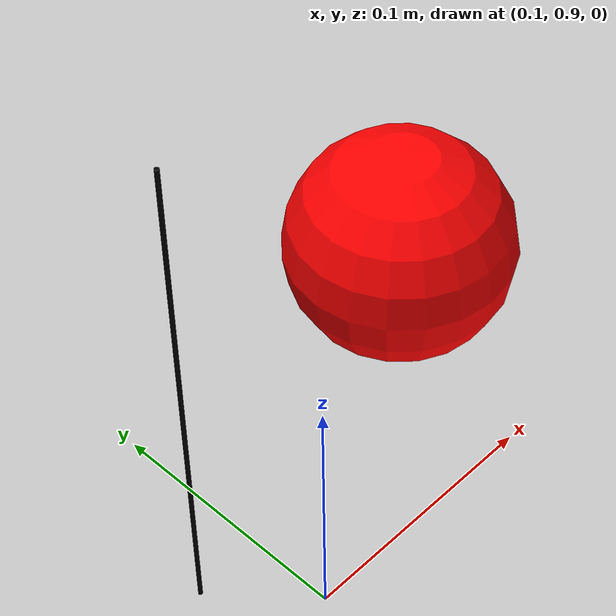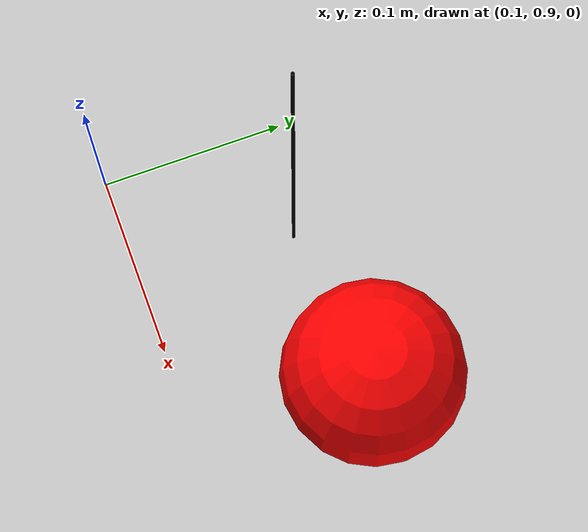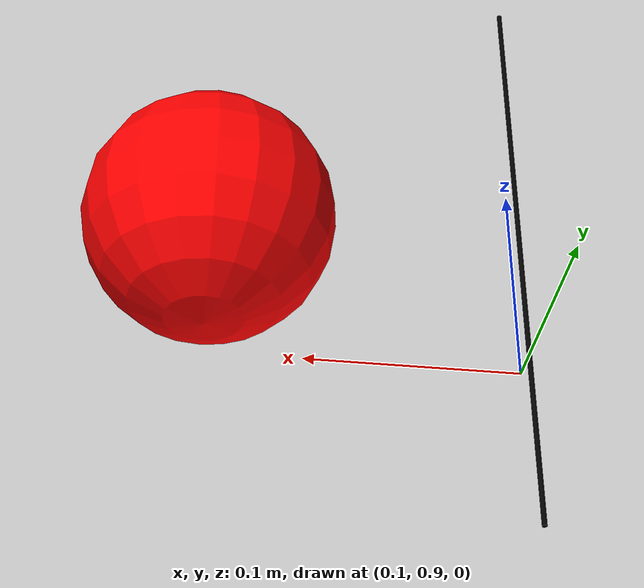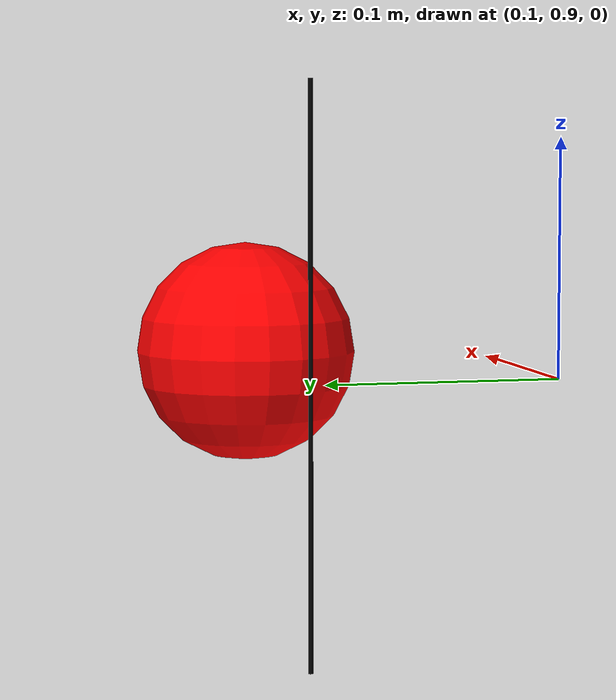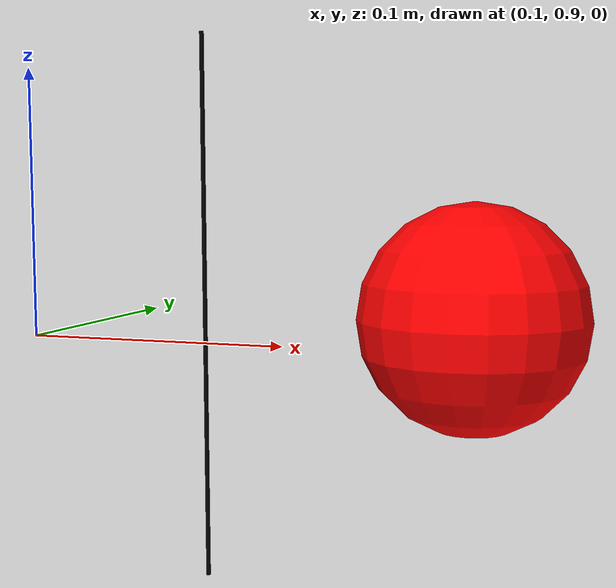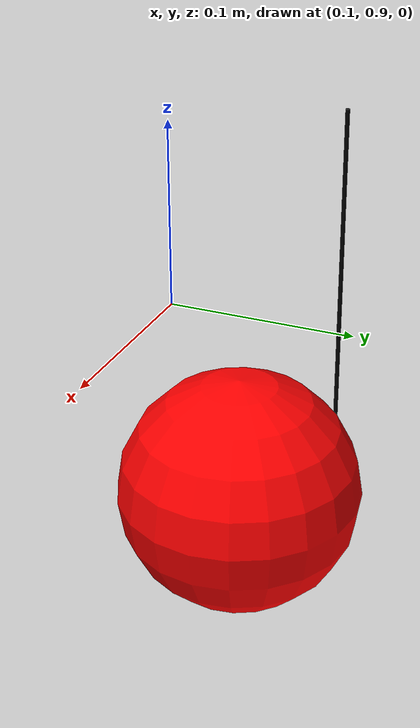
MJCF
<mujoco>
  <option gravity="0 -9.81 0" />
  <worldbody>
    <light diffuse=".5 .5 .5" pos="0 3 0" dir="0 -1 0"/>
    <body name="pendulum" pos="0 1 0">
      <joint name="hinge" type="hinge" axis="0 0 1" damping="0" frictionloss="0"/>
      <geom name="rod" type="cylinder" size="0.001 0.12425" pos="0.12425 0 0" rgba="0 0 0 1" contype="0" conaffinity="0"/>
      <body name="bob" pos="0.2485 0 0">
        <geom name="bob_geom" type="sphere" size="0.05" mass="1.0" rgba="1 0 0 1"/>
      </body>
    </body>
  </worldbody>
</mujoco>
